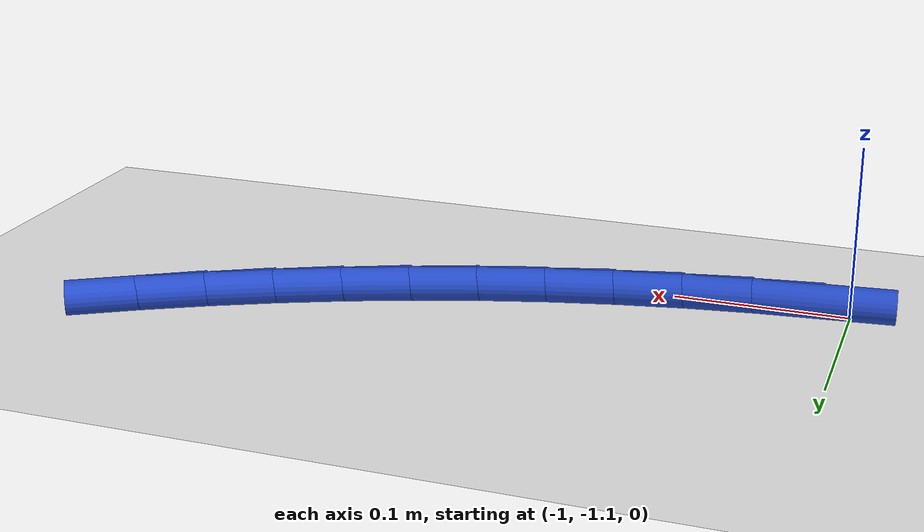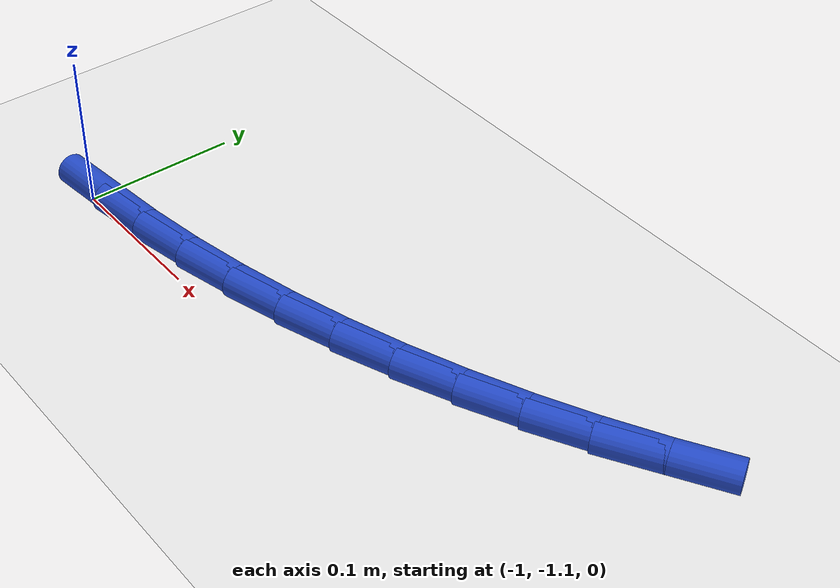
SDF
<sdf version="1.6">
 <world name="default">
  <model name="ground_plane">
   <static>1</static>
   <link name="link">
    <collision name="collision">
     <geometry><plane><normal>0 0 1</normal><size>100 100</size></plane></geometry>
     <surface><friction><ode><mu>100</mu><mu2>50</mu2></ode></friction></surface>
    </collision>
    <visual name="visual">
     <cast_shadows>0</cast_shadows>
     <geometry><plane><normal>0 0 1</normal><size>100 100</size></plane></geometry>
     <material>
      <script><uri>file://media/materials/scripts/gazebo.material</uri><name>Gazebo/WhiteGlow</name></script>
     </material>
    </visual>
   </link>
  </model>
  <model name="line">
   <link name="link_129">
    <pose>-0.9852399266945078 -1.0961588852385413 0.01 0 1.57 0.10202546994886198</pose>
    <collision name="collision">
     <geometry><cylinder><radius>0.01</radius><length>0.08</length></cylinder></geometry>
    </collision>
    <visual name="visual">
     <material>
      <script><name>Gazebo/Blue</name><uri>file://media/materials/scripts/gazebo.material</uri></script>
     </material>
     <geometry><cylinder><radius>0.01</radius><length>0.08</length></cylinder></geometry>
    </visual>
   </link>
   <link name="link_130">
    <pose>-0.9460471584882859 -1.0921462923499206 0.01 0 1.57 0.1479117571032237</pose>
    <collision name="collision">
     <geometry><cylinder><radius>0.01</radius><length>0.08</length></cylinder></geometry>
    </collision>
    <visual name="visual">
     <material>
      <script><name>Gazebo/Blue</name><uri>file://media/materials/scripts/gazebo.material</uri></script>
     </material>
     <geometry><cylinder><radius>0.01</radius><length>0.08</length></cylinder></geometry>
    </visual>
   </link>
   <link name="link_131">
    <pose>-0.9071819702099164 -1.0863553813708817 0.01 0 1.57 0.1930709044495957</pose>
    <collision name="collision">
     <geometry><cylinder><radius>0.01</radius><length>0.08</length></cylinder></geometry>
    </collision>
    <visual name="visual">
     <material>
      <script><name>Gazebo/Blue</name><uri>file://media/materials/scripts/gazebo.material</uri></script>
     </material>
     <geometry><cylinder><radius>0.01</radius><length>0.08</length></cylinder></geometry>
    </visual>
   </link>
   <link name="link_132">
    <pose>-0.8686993296198734 -1.0788317858819907 0.01 0 1.57 0.2375277140675285</pose>
    <collision name="collision">
     <geometry><cylinder><radius>0.01</radius><length>0.08</length></cylinder></geometry>
    </collision>
    <visual name="visual">
     <material>
      <script><name>Gazebo/Blue</name><uri>file://media/materials/scripts/gazebo.material</uri></script>
     </material>
     <geometry><cylinder><radius>0.01</radius><length>0.08</length></cylinder></geometry>
    </visual>
   </link>
   <link name="link_133">
    <pose>-0.8306542044786277 -1.0696211394638124 0.01 0 1.57 0.2813187825269147</pose>
    <collision name="collision">
     <geometry><cylinder><radius>0.01</radius><length>0.08</length></cylinder></geometry>
    </collision>
    <visual name="visual">
     <material>
      <script><name>Gazebo/Blue</name><uri>file://media/materials/scripts/gazebo.material</uri></script>
     </material>
     <geometry><cylinder><radius>0.01</radius><length>0.08</length></cylinder></geometry>
    </visual>
   </link>
   <link name="link_134">
    <pose>-0.793101562546652 -1.0587690756969121 0.01 0 1.57 0.3244910486639809</pose>
    <collision name="collision">
     <geometry><cylinder><radius>0.01</radius><length>0.08</length></cylinder></geometry>
    </collision>
    <visual name="visual">
     <material>
      <script><name>Gazebo/Blue</name><uri>file://media/materials/scripts/gazebo.material</uri></script>
     </material>
     <geometry><cylinder><radius>0.01</radius><length>0.08</length></cylinder></geometry>
    </visual>
   </link>
   <link name="link_135">
    <pose>-0.7560963715844187 -1.0463212281618564 0.01 0 1.57 0.36710040072853306</pose>
    <collision name="collision">
     <geometry><cylinder><radius>0.01</radius><length>0.08</length></cylinder></geometry>
    </collision>
    <visual name="visual">
     <material>
      <script><name>Gazebo/Blue</name><uri>file://media/materials/scripts/gazebo.material</uri></script>
     </material>
     <geometry><cylinder><radius>0.01</radius><length>0.08</length></cylinder></geometry>
    </visual>
   </link>
   <link name="link_136">
    <pose>-0.7196935993523985 -1.0323232304392085 0.01 0 1.57 0.40921037779949404</pose>
    <collision name="collision">
     <geometry><cylinder><radius>0.01</radius><length>0.08</length></cylinder></geometry>
    </collision>
    <visual name="visual">
     <material>
      <script><name>Gazebo/Blue</name><uri>file://media/materials/scripts/gazebo.material</uri></script>
     </material>
     <geometry><cylinder><radius>0.01</radius><length>0.08</length></cylinder></geometry>
    </visual>
   </link>
   <link name="link_137">
    <pose>-0.6839482136110656 -1.016820716109535 0.01 0 1.57 0.4508909854077226</pose>
    <collision name="collision">
     <geometry><cylinder><radius>0.01</radius><length>0.08</length></cylinder></geometry>
    </collision>
    <visual name="visual">
     <material>
      <script><name>Gazebo/Blue</name><uri>file://media/materials/scripts/gazebo.material</uri></script>
     </material>
     <geometry><cylinder><radius>0.01</radius><length>0.08</length></cylinder></geometry>
    </visual>
   </link>
   <link name="link_138">
    <pose>-0.6489151821208912 -0.9998593187534011 0.01 0 1.57 0.4921865529493703</pose>
    <collision name="collision">
     <geometry><cylinder><radius>0.01</radius><length>0.08</length></cylinder></geometry>
    </collision>
    <visual name="visual">
     <material>
      <script><name>Gazebo/Blue</name><uri>file://media/materials/scripts/gazebo.material</uri></script>
     </material>
     <geometry><cylinder><radius>0.01</radius><length>0.08</length></cylinder></geometry>
    </visual>
   </link>
   <link name="link_139">
    <pose>-0.6146480135278504 -0.9814852607523883 0.01 0 1.57 0.5324915260950738</pose>
    <collision name="collision">
     <geometry><cylinder><radius>0.01</radius><length>0.08</length></cylinder></geometry>
    </collision>
    <visual name="visual">
     <material>
      <script><name>Gazebo/Blue</name><uri>file://media/materials/scripts/gazebo.material</uri></script>
     </material>
     <geometry><cylinder><radius>0.01</radius><length>0.08</length></cylinder></geometry>
    </visual>
   </link>
  </model>
 </world>
</sdf>
